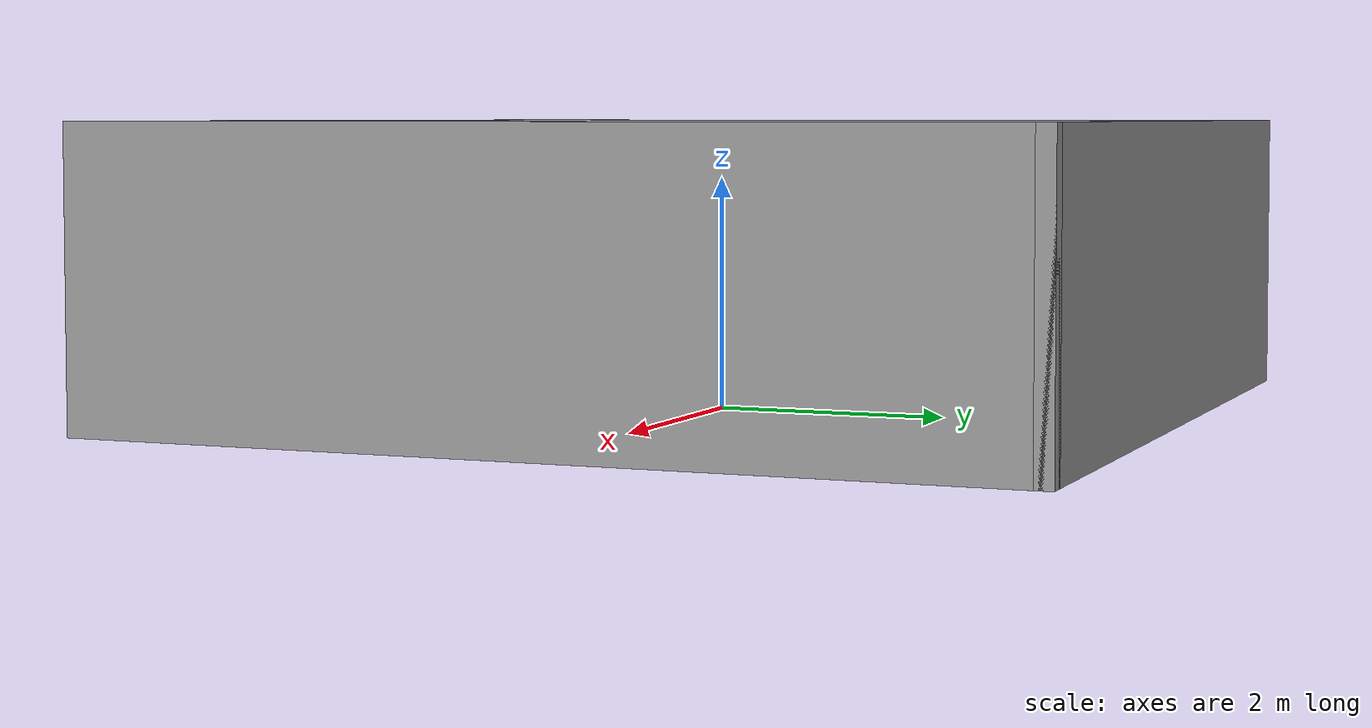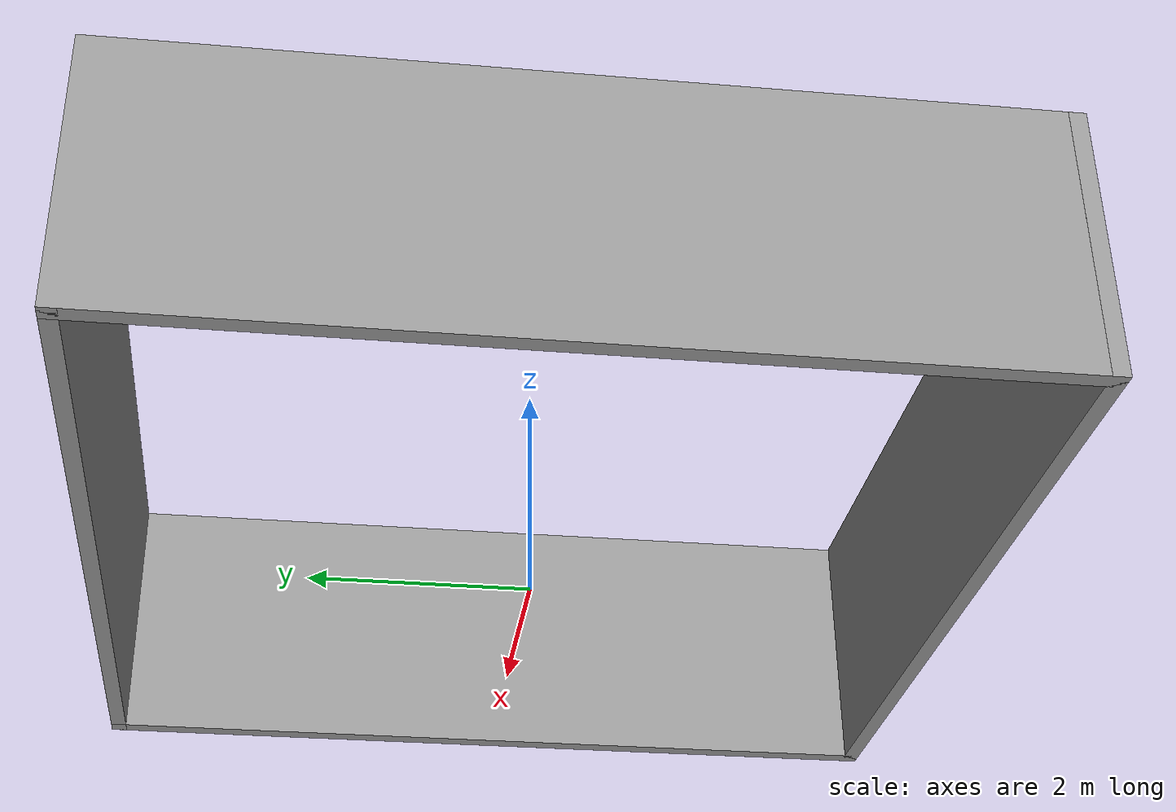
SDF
<?xml version='1.0'?>
<sdf version='1.7'>
  <model name='EmptyWorld_8size'>
    <pose>-0.128666 -0.024036 0 0 -0 0</pose>
    <link name='Wall_2'>
      <collision name='Wall_2_Collision'>
        <geometry>
          <box>
            <size>8 0.15 2.5</size>
          </box>
        </geometry>
        <pose>0 0 1.25 0 -0 0</pose>
      </collision>
      <visual name='Wall_2_Visual'>
        <pose>0 0 1.25 0 -0 0</pose>
        <geometry>
          <box>
            <size>8 0.15 2.5</size>
          </box>
        </geometry>
        <material>
          <script>
            <uri>file://media/materials/scripts/gazebo.material</uri>
            <name>Gazebo/Grey</name>
          </script>
          <ambient>1 1 1 1</ambient>
        </material>
        <meta>
          <layer>0</layer>
        </meta>
      </visual>
      <pose>-3.925 -0 0 0 -0 1.5708</pose>
    </link>
    <link name='Wall_4'>
      <collision name='Wall_4_Collision'>
        <geometry>
          <box>
            <size>8 0.15 2.5</size>
          </box>
        </geometry>
        <pose>0 0 1.25 0 -0 0</pose>
      </collision>
      <visual name='Wall_4_Visual'>
        <pose>0 0 1.25 0 -0 0</pose>
        <geometry>
          <box>
            <size>8 0.15 2.5</size>
          </box>
        </geometry>
        <material>
          <script>
            <uri>file://media/materials/scripts/gazebo.material</uri>
            <name>Gazebo/Grey</name>
          </script>
          <ambient>1 1 1 1</ambient>
        </material>
        <meta>
          <layer>0</layer>
        </meta>
      </visual>
      <pose>-0 -3.925 0 0 -0 0</pose>
    </link>
    <link name='Wall_5'>
      <collision name='Wall_5_Collision'>
        <geometry>
          <box>
            <size>0.15 0.15 2.5</size>
          </box>
        </geometry>
        <pose>0 0 1.25 0 -0 0</pose>
      </collision>
      <visual name='Wall_5_Visual'>
        <pose>0 0 1.25 0 -0 0</pose>
        <geometry>
          <box>
            <size>0.15 0.15 2.5</size>
          </box>
        </geometry>
        <material>
          <script>
            <uri>file://media/materials/scripts/gazebo.material</uri>
            <name>Gazebo/Grey</name>
          </script>
          <ambient>1 1 1 1</ambient>
        </material>
        <meta>
          <layer>0</layer>
        </meta>
      </visual>
      <pose>3.925 -3.925 0 0 -0 0</pose>
    </link>
    <link name='Wall_6'>
      <collision name='Wall_6_Collision'>
        <geometry>
          <box>
            <size>8 0.15 2.5</size>
          </box>
        </geometry>
        <pose>0 0 1.25 0 -0 0</pose>
      </collision>
      <visual name='Wall_6_Visual'>
        <pose>0 0 1.25 0 -0 0</pose>
        <geometry>
          <box>
            <size>8 0.15 2.5</size>
          </box>
        </geometry>
        <material>
          <script>
            <uri>file://media/materials/scripts/gazebo.material</uri>
            <name>Gazebo/Grey</name>
          </script>
          <ambient>1 1 1 1</ambient>
        </material>
        <meta>
          <layer>0</layer>
        </meta>
      </visual>
      <pose>3.925 -0 0 0 -0 1.5708</pose>
    </link>
    <link name='Wall_7'>
      <collision name='Wall_7_Collision'>
        <geometry>
          <box>
            <size>0.15 0.15 2.5</size>
          </box>
        </geometry>
        <pose>0 0 1.25 0 -0 0</pose>
      </collision>
      <visual name='Wall_7_Visual'>
        <pose>0 0 1.25 0 -0 0</pose>
        <geometry>
          <box>
            <size>0.15 0.15 2.5</size>
          </box>
        </geometry>
        <material>
          <script>
            <uri>file://media/materials/scripts/gazebo.material</uri>
            <name>Gazebo/Grey</name>
          </script>
          <ambient>1 1 1 1</ambient>
        </material>
        <meta>
          <layer>0</layer>
        </meta>
      </visual>
      <pose>3.925 3.925 0 0 -0 0</pose>
    </link>
    <link name='Wall_8'>
      <collision name='Wall_8_Collision'>
        <geometry>
          <box>
            <size>8 0.15 2.5</size>
          </box>
        </geometry>
        <pose>0 0 1.25 0 -0 0</pose>
      </collision>
      <visual name='Wall_8_Visual'>
        <pose>0 0 1.25 0 -0 0</pose>
        <geometry>
          <box>
            <size>8 0.15 2.5</size>
          </box>
        </geometry>
        <material>
          <script>
            <uri>file://media/materials/scripts/gazebo.material</uri>
            <name>Gazebo/Grey</name>
          </script>
          <ambient>1 1 1 1</ambient>
        </material>
        <meta>
          <layer>0</layer>
        </meta>
      </visual>
      <pose>-0 3.925 0 0 -0 3.14159</pose>
    </link>
    <static>1</static>
  </model>
</sdf>
